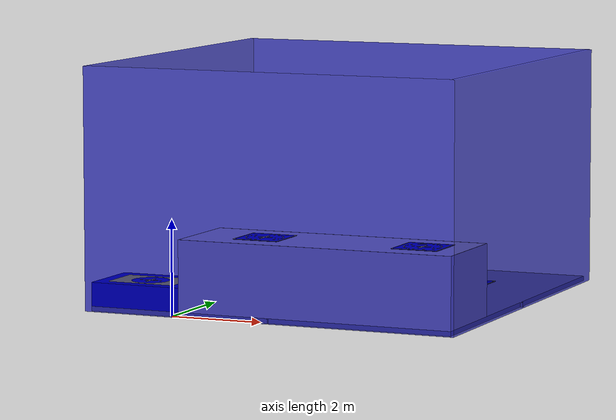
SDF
<sdf version='1.11'>
  <model name='arena_2025_desenho_4'>
    <link name='base_link'>
      <inertial>
        <pose>2.0737476890093078 3.7429410366492242 1.664153294970578 0 0 0</pose>
        <mass>209967.48191315381</mass>
        <inertia>
          <ixx>2421659.2260600538</ixx>
          <ixy>-80308.866058408283</ixy>
          <ixz>-28312.23351083498</ixz>
          <iyy>2424818.7915455648</iyy>
          <iyz>-50644.328831646133</iyz>
          <izz>3734918.123583673</izz>
        </inertia>
      </inertial>
      <collision name='base_link_collision_collision'>
        <pose>0 0 0 0 0 0</pose>
        <geometry>
          <mesh>
            <scale>0.001 0.001 0.001</scale>
            <uri>meshes/base_link.stl</uri>
          </mesh>
        </geometry>
      </collision>
      <collision name='base_link_fixed_joint_lump__parede1_collision_collision_1'>
        <pose>-1.8502115568123969 -0.041793670335398492 -1.387778780781446e-17 0 0 0</pose>
        <geometry>
          <mesh>
            <scale>0.001 0.001 0.001</scale>
            <uri>meshes/parede1.stl</uri>
          </mesh>
        </geometry>
      </collision>
      <collision name='base_link_fixed_joint_lump__parede4_collision_collision_2'>
        <pose>-1.8502115568123969 -0.041793670335399817 -2.4355517602714372e-15 0 0 0</pose>
        <geometry>
          <mesh>
            <scale>0.001 0.001 0.001</scale>
            <uri>meshes/parede4.stl</uri>
          </mesh>
        </geometry>
      </collision>
      <collision name='base_link_fixed_joint_lump__parede3_collision_collision_3'>
        <pose>-1.8502115568123969 -0.041793670335398943 1.117161918529064e-15 1.224646799147353e-16 -7.4987989133092894e-33 1.224646799147353e-16</pose>
        <geometry>
          <mesh>
            <scale>0.001 0.001 0.001</scale>
            <uri>meshes/parede3.stl</uri>
          </mesh>
        </geometry>
      </collision>
      <collision name='base_link_fixed_joint_lump__parede2_collision_collision_4'>
        <pose>-1.8502115568123969 -0.041793670335398478 -1.387778780781446e-17 0 0 0</pose>
        <geometry>
          <mesh>
            <scale>0.001 0.001 0.001</scale>
            <uri>meshes/parede2.stl</uri>
          </mesh>
        </geometry>
      </collision>
      <collision name='base_link_fixed_joint_lump__Takeoff_Baseazul_collision_collision_5'>
        <pose>-1.8502115568123969 -0.041793670335398492 2.9143354396410359e-16 0 0 0</pose>
        <geometry>
          <mesh>
            <scale>0.001 0.001 0.001</scale>
            <uri>meshes/Takeoff_Baseazul.stl</uri>
          </mesh>
        </geometry>
      </collision>
      <collision name='base_link_fixed_joint_lump__Takeoff_Baseamarelo_collision_collision_6'>
        <pose>-1.8502115568123969 -0.041793670335398492 3.6082248300317588e-16 0 0 0</pose>
        <geometry>
          <mesh>
            <scale>0.001 0.001 0.001</scale>
            <uri>meshes/Takeoff_Baseamarelo.stl</uri>
          </mesh>
        </geometry>
      </collision>
      <collision name='base_link_fixed_joint_lump__casa_paredes_collision_collision_7'>
        <pose>-1.850211556812398 -0.041793670335398492 0 0 0 0</pose>
        <geometry>
          <mesh>
            <scale>0.001 0.001 0.001</scale>
            <uri>meshes/casa_paredes.stl</uri>
          </mesh>
        </geometry>
      </collision>
      <collision name='base_link_fixed_joint_lump__casa_teto_collision_collision_8'>
        <pose>-1.8502115568123949 -0.041793670335397937 1.110223024625157e-16 0 0 0</pose>
        <geometry>
          <mesh>
            <scale>0.001 0.001 0.001</scale>
            <uri>meshes/casa_teto.stl</uri>
          </mesh>
        </geometry>
      </collision>
      <collision name='base_link_fixed_joint_lump__Landing_Basesazul6_collision_collision_9'>
        <pose>-3.3502115568124 -0.12979367033539929 -1.000000000014901 0 0 0</pose>
        <geometry>
          <mesh>
            <scale>0.001 0.001 0.001</scale>
            <uri>meshes/Landing_Basesazul6.stl</uri>
          </mesh>
        </geometry>
      </collision>
      <collision name='base_link_fixed_joint_lump__Landing_Basesamarelo_6_collision_collision_10'>
        <pose>-3.3502115568124 -0.1297936703353996 -0.0010000000149011921 0 0 0</pose>
        <geometry>
          <mesh>
            <scale>0.001 0.001 0.001</scale>
            <uri>meshes/Landing_Basesamarelo_6.stl</uri>
          </mesh>
        </geometry>
      </collision>
      <collision name='base_link_fixed_joint_lump__Landing_Basesazul5_collision_collision_11'>
        <pose>-1.850211556812386 -2.0417936703353909 -0.80000000001490135 0 0 0</pose>
        <geometry>
          <mesh>
            <scale>0.001 0.001 0.001</scale>
            <uri>meshes/Landing_Basesazul5.stl</uri>
          </mesh>
        </geometry>
      </collision>
      <collision name='base_link_fixed_joint_lump__Landing_Basesamarelo_5_collision_collision_12'>
        <pose>-1.850211556812406 -2.0417936703353989 1.499999999985099 0 0 0</pose>
        <geometry>
          <mesh>
            <scale>0.001 0.001 0.001</scale>
            <uri>meshes/Landing_Basesamarelo_5.stl</uri>
          </mesh>
        </geometry>
      </collision>
      <collision name='base_link_fixed_joint_lump__base_movelzinza2_collision_collision_13'>
        <pose>0.14978851318359249 -3.0417936706542972 -1.701000000014901 0 0 0</pose>
        <geometry>
          <mesh>
            <scale>0.001 0.001 0.001</scale>
            <uri>meshes/base_movelzinza2.stl</uri>
          </mesh>
        </geometry>
      </collision>
      <collision name='base_link_fixed_joint_lump__Landing_Basesazul2_collision_collision_14'>
        <pose>0.14978851318359959 -3.041793670654287 -0.001000016108155283 0 0 0</pose>
        <geometry>
          <mesh>
            <scale>0.001 0.001 0.001</scale>
            <uri>meshes/Landing_Basesazul2.stl</uri>
          </mesh>
        </geometry>
      </collision>
      <collision name='base_link_fixed_joint_lump__Landing_Basesamarelo_2_collision_collision_15'>
        <pose>0.1497885131836032 -3.0417936706542812 -0.001000016108155283 0 0 0</pose>
        <geometry>
          <mesh>
            <scale>0.001 0.001 0.001</scale>
            <uri>meshes/Landing_Basesamarelo_2.stl</uri>
          </mesh>
        </geometry>
      </collision>
      <collision name='base_link_fixed_joint_lump__base_movelzinza1_collision_collision_16'>
        <pose>0.34978851318359938 2.6582063293457212 -1.701000000014901 0 0 0</pose>
        <geometry>
          <mesh>
            <scale>0.001 0.001 0.001</scale>
            <uri>meshes/base_movelzinza1.stl</uri>
          </mesh>
        </geometry>
      </collision>
      <collision name='base_link_fixed_joint_lump__Landing_Basesazul1_collision_collision_17'>
        <pose>0.34978851318360071 2.6582063293457252 -2.775557561562891e-17 0 0 0</pose>
        <geometry>
          <mesh>
            <scale>0.001 0.001 0.001</scale>
            <uri>meshes/Landing_Basesazul1.stl</uri>
          </mesh>
        </geometry>
      </collision>
      <collision name='base_link_fixed_joint_lump__Landing_Basesamarelo_1_collision_collision_18'>
        <pose>0.34978851318360471 2.6582063293457359 -2.775557561562891e-17 0 0 0</pose>
        <geometry>
          <mesh>
            <scale>0.001 0.001 0.001</scale>
            <uri>meshes/Landing_Basesamarelo_1.stl</uri>
          </mesh>
        </geometry>
      </collision>
      <collision name='base_link_fixed_joint_lump__Landing_Basesazul3_collision_collision_19'>
        <pose>-1.3502114868164059 -2.0417936706542972 -1.500000000014901 0 0 0</pose>
        <geometry>
          <mesh>
            <scale>0.001 0.001 0.001</scale>
            <uri>meshes/Landing_Basesazul3.stl</uri>
          </mesh>
        </geometry>
      </collision>
      <collision name='base_link_fixed_joint_lump__Landing_Basesamarelo_3_collision_collision_20'>
        <pose>-1.3502114868164059 -2.0417936706542972 -1.4901219147489538e-11 0 0 0</pose>
        <geometry>
          <mesh>
            <scale>0.001 0.001 0.001</scale>
            <uri>meshes/Landing_Basesamarelo_3.stl</uri>
          </mesh>
        </geometry>
      </collision>
      <collision name='base_link_fixed_joint_lump__Landing_Basesazul4_collision_collision_21'>
        <pose>0.14978851318359249 1.458206329345703 -1.000000000014901 0 0 0</pose>
        <geometry>
          <mesh>
            <scale>0.001 0.001 0.001</scale>
            <uri>meshes/Landing_Basesazul4.stl</uri>
          </mesh>
        </geometry>
      </collision>
      <collision name='base_link_fixed_joint_lump__Landing_Basesamarelo_4_collision_collision_22'>
        <pose>0.14978851318359249 1.458206329345703 -1.4901219147489538e-11 0 0 0</pose>
        <geometry>
          <mesh>
            <scale>0.001 0.001 0.001</scale>
            <uri>meshes/Landing_Basesamarelo_4.stl</uri>
          </mesh>
        </geometry>
      </collision>

      #visuals cores

      <visual name='base_link_visual_visual'>
        <pose>0 0 0 0 0 0</pose>
        <geometry>
          <mesh>
            <scale>0.001 0.001 0.001</scale>
            <uri>meshes/base_link.stl</uri>
          </mesh>
        </geometry>
        <material>
          <ambient>0.4 0.4 0.4 1</ambient>
          <diffuse>0.6 0.6 0.6 1</diffuse>
          <specular>0.8 0.8 0.8 1</specular>
        </material>
      </visual>
      <visual name='base_link_fixed_joint_lump__parede1_visual_visual_1'>
        <pose>-1.8502115568123969 -0.041793670335398492 -1.387778780781446e-17 0 0 0</pose>
        <geometry>
          <mesh>
            <scale>0.001 0.001 0.001</scale>
            <uri>meshes/parede1.stl</uri>
          </mesh>
        </geometry>
        <material>
          <ambient>0.0 0.0 0.5 0.65</ambient>
          <diffuse>0.0 0.0 0.8 0.65</diffuse>
          <specular>0.3 0.3 0.8 0.65</specular>
          <transparency>0.65</transparency>
        </material>
      </visual>
      <visual name='base_link_fixed_joint_lump__parede4_visual_visual_2'>
        <pose>-1.8502115568123969 -0.041793670335399817 -2.4355517602714372e-15 0 0 0</pose>
        <geometry>
          <mesh>
            <scale>0.001 0.001 0.001</scale>
            <uri>meshes/parede4.stl</uri>
          </mesh>
        </geometry>
        <material>
          <ambient>0.0 0.0 0.5 0.65</ambient>
          <diffuse>0.0 0.0 0.8 0.65</diffuse>
          <specular>0.3 0.3 0.8 0.65</specular>
          <transparency>0.65</transparency>
        </material>
      </visual>
      <visual name='base_link_fixed_joint_lump__parede3_visual_visual_3'>
        <pose>-1.8502115568123969 -0.041793670335398943 1.117161918529064e-15 1.224646799147353e-16 -7.4987989133092894e-33 1.224646799147353e-16</pose>
        <geometry>
          <mesh>
            <scale>0.001 0.001 0.001</scale>
            <uri>meshes/parede3.stl</uri>
          </mesh>
        </geometry>
        <material>
          <ambient>0.0 0.0 0.5 0.65</ambient>
          <diffuse>0.0 0.0 0.8 0.65</diffuse>
          <specular>0.3 0.3 0.8 0.65</specular>
          <transparency>0.65</transparency>
        </material>
      </visual>
      <visual name='base_link_fixed_joint_lump__parede2_visual_visual_4'>
        <pose>-1.8502115568123969 -0.041793670335398478 -1.387778780781446e-17 0 0 0</pose>
        <geometry>
          <mesh>
            <scale>0.001 0.001 0.001</scale>
            <uri>meshes/parede2.stl</uri>
          </mesh>
        </geometry>
        <material>
          <ambient>0.0 0.0 0.5 0.65</ambient>
          <diffuse>0.0 0.0 0.8 0.65</diffuse>
          <specular>0.3 0.3 0.8 0.65</specular>
          <transparency>0.65</transparency>
        </material>
      </visual>
      <visual name='base_link_fixed_joint_lump__Takeoff_Baseazul_visual_visual_5'>
        <pose>-1.8502115568123969 -0.041793670335398492 2.9143354396410359e-16 0 0 0</pose>
        <geometry>
          <mesh>
            <scale>0.001 0.001 0.001</scale>
            <uri>meshes/Takeoff_Baseazul.stl</uri>
          </mesh>
        </geometry>
        <material>
          <ambient>0.0 0.0 0.5 1</ambient>
          <diffuse>0.0 0.0 0.8 1</diffuse>
          <specular>0.3 0.3 0.8 1</specular>
        </material>
      </visual>
      <visual name='base_link_fixed_joint_lump__Takeoff_Baseamarelo_visual_visual_6'>
        <pose>-1.8502115568123969 -0.041793670335398492 3.6082248300317588e-16 0 0 0</pose>
        <geometry>
          <mesh>
            <scale>0.001 0.001 0.001</scale>
            <uri>meshes/Takeoff_Baseamarelo.stl</uri>
          </mesh>
        </geometry>
        <material>
          <ambient>0.8 0.8 0.0 1</ambient>
          <diffuse>1.0 1.0 0.0 1</diffuse>
           <specular>0.8 0.8 0.3 1</specular>
        </material>
      </visual>
      <visual name='base_link_fixed_joint_lump__casa_paredes_visual_visual_7'>
        <pose>-1.850211556812398 -0.041793670335398492 0 0 0 0</pose>
        <geometry>
          <mesh>
            <scale>0.001 0.001 0.001</scale>
            <uri>meshes/casa_paredes.stl</uri>
          </mesh>
        </geometry>
        <material>
          <ambient>0.92 0.90 0.85 1</ambient>
          <diffuse>0.94 0.92 0.87 1</diffuse>
          <specular>0.14 0.14 0.13 1</specular>
        </material>
      </visual>
      <visual name='base_link_fixed_joint_lump__casa_teto_visual_visual_8'>
        <pose>-1.8502115568123949 -0.041793670335397937 1.110223024625157e-16 0 0 0</pose>
        <geometry>
          <mesh>
            <scale>0.001 0.001 0.001</scale>
            <uri>meshes/casa_teto.stl</uri>
          </mesh>
        </geometry>
        <material>
          <ambient>0.92 0.90 0.85 1</ambient>
          <diffuse>0.94 0.92 0.87 1</diffuse>
          <specular>0.14 0.14 0.13 1</specular>
        </material>
      </visual>
      <visual name='base_link_fixed_joint_lump__Landing_Basesazul6_visual_visual_9'>
        <pose>-3.3502115568124 -0.12979367033539929 -1.000000000014901 0 0 0</pose>
        <geometry>
          <mesh>
            <scale>0.001 0.001 0.001</scale>
            <uri>meshes/Landing_Basesazul6.stl</uri>
          </mesh>
        </geometry>
        <material>
          <ambient>0.0 0.0 0.5 1</ambient>
          <diffuse>0.0 0.0 0.8 1</diffuse>
          <specular>0.3 0.3 0.8 1</specular>
        </material>
      </visual>
      <visual name='base_link_fixed_joint_lump__Landing_Basesamarelo_6_visual_visual_10'>
        <pose>-3.3502115568124 -0.1297936703353996 -0.0010000000149011921 0 0 0</pose>
        <geometry>
          <mesh>
            <scale>0.001 0.001 0.001</scale>
            <uri>meshes/Landing_Basesamarelo_6.stl</uri>
          </mesh>
        </geometry>
        <material>
          <ambient>0.8 0.8 0.0 1</ambient>
          <diffuse>1.0 1.0 0.0 1</diffuse>
           <specular>0.8 0.8 0.3 1</specular>
        </material>
      </visual>
      <visual name='base_link_fixed_joint_lump__Landing_Basesazul5_visual_visual_11'>
        <pose>-1.850211556812386 -2.0417936703353909 -0.80000000001490135 0 0 0</pose>
        <geometry>
          <mesh>
            <scale>0.001 0.001 0.001</scale>
            <uri>meshes/Landing_Basesazul5.stl</uri>
          </mesh>
        </geometry>
        <material>
          <ambient>0.0 0.0 0.5 1</ambient>
          <diffuse>0.0 0.0 0.8 1</diffuse>
          <specular>0.3 0.3 0.8 1</specular>
        </material>
      </visual>
      <visual name='base_link_fixed_joint_lump__Landing_Basesamarelo_5_visual_visual_12'>
        <pose>-1.850211556812406 -2.0417936703353989 1.499999999985099 0 0 0</pose>
        <geometry>
          <mesh>
            <scale>0.001 0.001 0.001</scale>
            <uri>meshes/Landing_Basesamarelo_5.stl</uri>
          </mesh>
        </geometry>
        <material>
          <ambient>0.8 0.8 0.0 1</ambient>
          <diffuse>1.0 1.0 0.0 1</diffuse>
           <specular>0.8 0.8 0.3 1</specular>
        </material>
      </visual>
      <visual name='base_link_fixed_joint_lump__base_movelzinza2_visual_visual_13'>
        <pose>0.14978851318359249 -3.0417936706542972 -1.701000000014901 0 0 0</pose>
        <geometry>
          <mesh>
            <scale>0.001 0.001 0.001</scale>
            <uri>meshes/base_movelzinza2.stl</uri>
          </mesh>
        </geometry>
        <material>
          <ambient>0.92 0.90 0.85 1</ambient>
          <diffuse>0.94 0.92 0.87 1</diffuse>
          <specular>0.14 0.14 0.13 1</specular>
        </material>
      </visual>
      <visual name='base_link_fixed_joint_lump__Landing_Basesazul2_visual_visual_14'>
        <pose>0.14978851318359959 -3.041793670654287 -0.001000016108155283 0 0 0</pose>
        <geometry>
          <mesh>
            <scale>0.001 0.001 0.001</scale>
            <uri>meshes/Landing_Basesazul2.stl</uri>
          </mesh>
        </geometry>
        <material>
          <ambient>0.0 0.0 0.5 1</ambient>
          <diffuse>0.0 0.0 0.8 1</diffuse>
          <specular>0.3 0.3 0.8 1</specular>
        </material>
      </visual>
      <visual name='base_link_fixed_joint_lump__Landing_Basesamarelo_2_visual_visual_15'>
        <pose>0.1497885131836032 -3.0417936706542812 -0.001000016108155283 0 0 0</pose>
        <geometry>
          <mesh>
            <scale>0.001 0.001 0.001</scale>
            <uri>meshes/Landing_Basesamarelo_2.stl</uri>
          </mesh>
        </geometry>
        <material>
          <ambient>0.8 0.8 0.0 1</ambient>
          <diffuse>1.0 1.0 0.0 1</diffuse>
           <specular>0.8 0.8 0.3 1</specular>
        </material>
      </visual>
      <visual name='base_link_fixed_joint_lump__base_movelzinza1_visual_visual_16'>
        <pose>0.34978851318359938 2.6582063293457212 -1.701000000014901 0 0 0</pose>
        <geometry>
          <mesh>
            <scale>0.001 0.001 0.001</scale>
            <uri>meshes/base_movelzinza1.stl</uri>
          </mesh>
        </geometry>
        <material>
          <ambient>0.92 0.90 0.85 1</ambient>
          <diffuse>0.94 0.92 0.87 1</diffuse>
          <specular>0.14 0.14 0.13 1</specular>
        </material>
      </visual>
      <visual name='base_link_fixed_joint_lump__Landing_Basesazul1_visual_visual_17'>
        <pose>0.34978851318360071 2.6582063293457252 -2.775557561562891e-17 0 0 0</pose>
        <geometry>
          <mesh>
            <scale>0.001 0.001 0.001</scale>
            <uri>meshes/Landing_Basesazul1.stl</uri>
          </mesh>
        </geometry>
        <material>
          <ambient>0.0 0.0 0.5 1</ambient>
          <diffuse>0.0 0.0 0.8 1</diffuse>
          <specular>0.3 0.3 0.8 1</specular>
        </material>
      </visual>
      <visual name='base_link_fixed_joint_lump__Landing_Basesamarelo_1_visual_visual_18'>
        <pose>0.34978851318360471 2.6582063293457359 -2.775557561562891e-17 0 0 0</pose>
        <geometry>
          <mesh>
            <scale>0.001 0.001 0.001</scale>
            <uri>meshes/Landing_Basesamarelo_1.stl</uri>
          </mesh>
        </geometry>
        <material>
          <ambient>0.8 0.8 0.0 1</ambient>
          <diffuse>1.0 1.0 0.0 1</diffuse>
           <specular>0.8 0.8 0.3 1</specular>
        </material>
      </visual>
      <visual name='base_link_fixed_joint_lump__Landing_Basesazul3_visual_visual_19'>
        <pose>-1.3502114868164059 -2.0417936706542972 -1.500000000014901 0 0 0</pose>
        <geometry>
          <mesh>
            <scale>0.001 0.001 0.001</scale>
            <uri>meshes/Landing_Basesazul3.stl</uri>
          </mesh>
        </geometry>
        <material>
          <ambient>0.0 0.0 0.5 1</ambient>
          <diffuse>0.0 0.0 0.8 1</diffuse>
          <specular>0.3 0.3 0.8 1</specular>
        </material>
      </visual>
      <visual name='base_link_fixed_joint_lump__Landing_Basesamarelo_3_visual_visual_20'>
        <pose>-1.3502114868164059 -2.0417936706542972 -1.4901219147489538e-11 0 0 0</pose>
        <geometry>
          <mesh>
            <scale>0.001 0.001 0.001</scale>
            <uri>meshes/Landing_Basesamarelo_3.stl</uri>
          </mesh>
        </geometry>
        <material>
          <ambient>0.8 0.8 0.0 1</ambient>
          <diffuse>1.0 1.0 0.0 1</diffuse>
           <specular>0.8 0.8 0.3 1</specular>
        </material>
      </visual>
      <visual name='base_link_fixed_joint_lump__Landing_Basesazul4_visual_visual_21'>
        <pose>0.14978851318359249 1.458206329345703 -1.000000000014901 0 0 0</pose>
        <geometry>
          <mesh>
            <scale>0.001 0.001 0.001</scale>
            <uri>meshes/Landing_Basesazul4.stl</uri>
          </mesh>
        </geometry>
        <material>
          <ambient>0.0 0.0 0.5 1</ambient>
          <diffuse>0.0 0.0 0.8 1</diffuse>
          <specular>0.3 0.3 0.8 1</specular>
        </material>
      </visual>
      <visual name='base_link_fixed_joint_lump__Landing_Basesamarelo_4_visual_visual_22'>
        <pose>0.14978851318359249 1.458206329345703 -1.4901219147489538e-11 0 0 0</pose>
        <geometry>
          <mesh>
            <scale>0.001 0.001 0.001</scale>
            <uri>meshes/Landing_Basesamarelo_4.stl</uri>
          </mesh>
        </geometry>
        <material>
          <ambient>0.8 0.8 0.0 1</ambient>
          <diffuse>1.0 1.0 0.0 1</diffuse>
           <specular>0.8 0.8 0.3 1</specular>
        </material>
      </visual>
    </link>
    <frame name='base_link_Rígido-31' attached_to='base_link'>
      <pose>-1.900211556812397 3.958206329664602 0.050000000000000051 0 -1.5707963267948966 0</pose>
    </frame>
    <frame name='parede1' attached_to='base_link_Rígido-31'>
      <pose>0 0 0 0 0 0</pose>
    </frame>
    <frame name='base_link_Rígido-32' attached_to='base_link'>
      <pose>2.1497884431876031 8.0082063296646009 0.050000000000000051 -1.5707963267948959 0 0</pose>
    </frame>
    <frame name='parede4' attached_to='base_link_Rígido-32'>
      <pose>0 0 0 0 0 0</pose>
    </frame>
    <frame name='base_link_Rígido-33' attached_to='base_link'>
      <pose>6.1997884431876038 3.958206319664602 0.050000000000000051 -3.1415926535897931 -1.5707963267948966 0</pose>
    </frame>
    <frame name='parede3' attached_to='base_link_Rígido-33'>
      <pose>0 0 0 0 0 0</pose>
    </frame>
    <frame name='base_link_Rígido-34' attached_to='base_link'>
      <pose>2.1497884431876031 -0.091793670335398481 0.050000000000000051 1.5707963267948959 0 0</pose>
    </frame>
    <frame name='parede2' attached_to='base_link_Rígido-34'>
      <pose>0 0 0 0 0 0</pose>
    </frame>
    <frame name='Takeoff_Baseazul_Rígido-44' attached_to='Takeoff_Baseazul'>
      <pose>0 0 0.49099999999999999 0 0 0</pose>
    </frame>
    <frame name='Takeoff_Baseamarelo' attached_to='Takeoff_Baseazul_Rígido-44'>
      <pose>0 0 0 0 0 0</pose>
    </frame>
    <frame name='base_link_Rígido-35' attached_to='base_link'>
      <pose>-0.85021155681239691 0.70820632966460151 0.09900000000000006 0 0 0</pose>
    </frame>
    <frame name='Takeoff_Baseazul' attached_to='base_link_Rígido-35'>
      <pose>0 0 0 0 0 0</pose>
    </frame>
    <frame name='Landing_Basesazul6_Rígido-50' attached_to='Landing_Basesazul6'>
      <pose>0 -1.4210854715201999e-16 0.0050000000000000001 0 0 0</pose>
    </frame>
    <frame name='Landing_Basesamarelo_6' attached_to='Landing_Basesazul6_Rígido-50'>
      <pose>0 0 0 0 0 0</pose>
    </frame>
    <frame name='casa_teto_Rígido-62' attached_to='casa_teto'>
      <pose>-1.48800003 4.5400000000483941e-06 0.0040000000000000573 0 0 0</pose>
    </frame>
    <frame name='Landing_Basesazul6' attached_to='casa_teto_Rígido-62'>
      <pose>0 0 0 0 0 0</pose>
    </frame>
    <frame name='Landing_Basesazul5_Rígido-49' attached_to='Landing_Basesazul5'>
      <pose>0 -1.4210854715201999e-16 0.0050000000000000001 0 0 0</pose>
    </frame>
    <frame name='Landing_Basesamarelo_5' attached_to='Landing_Basesazul5_Rígido-49'>
      <pose>0 0 0 0 0 0</pose>
    </frame>
    <frame name='casa_teto_Rígido-63' attached_to='casa_teto'>
      <pose>2.0119999700000002 4.5400000000483941e-06 0.0040000000000000573 0 0 0</pose>
    </frame>
    <frame name='Landing_Basesazul5' attached_to='casa_teto_Rígido-63'>
      <pose>0 0 0 0 0 0</pose>
    </frame>
    <frame name='casa_paredes_Rígido-42' attached_to='casa_paredes'>
      <pose>0 0 1.522 0 0 0</pose>
    </frame>
    <frame name='casa_teto' attached_to='casa_paredes_Rígido-42'>
      <pose>0 0 0 0 0 0</pose>
    </frame>
    <frame name='base_link_Rígido-41' attached_to='base_link'>
      <pose>3.1377884731876029 0.95820178966460146 0.073000000000000065 0 0 0</pose>
    </frame>
    <frame name='casa_paredes' attached_to='base_link_Rígido-41'>
      <pose>0 0 0 0 0 0</pose>
    </frame>
    <frame name='Landing_Basesazul2_Rígido-61' attached_to='Landing_Basesazul2'>
      <pose>0 0 0.0099999800000000506 0 0 0</pose>
    </frame>
    <frame name='Landing_Basesamarelo_2' attached_to='Landing_Basesazul2_Rígido-61'>
      <pose>0 0 0 0 0 0</pose>
    </frame>
    <frame name='base_movelzinza2_Rígido-60' attached_to='base_movelzinza2'>
      <pose>0 0 0.97999999999999998 0 0 0</pose>
    </frame>
    <frame name='Landing_Basesazul2' attached_to='base_movelzinza2_Rígido-60'>
      <pose>0 0 0 0 0 0</pose>
    </frame>
    <frame name='base_link_Rígido-64' attached_to='base_link'>
      <pose>4.6497885131876027 3.458206329664602 0.09900000000000006 0 0 0</pose>
    </frame>
    <frame name='base_movelzinza2' attached_to='base_link_Rígido-64'>
      <pose>0 0 0 0 0 0</pose>
    </frame>
    <frame name='Landing_Basesazul1_Rígido-57' attached_to='Landing_Basesazul1'>
      <pose>0 0 0.01099999999999994 0 0 0</pose>
    </frame>
    <frame name='Landing_Basesamarelo_1' attached_to='Landing_Basesazul1_Rígido-57'>
      <pose>0 0 0 0 0 0</pose>
    </frame>
    <frame name='base_movelzinza1_Rígido-56' attached_to='base_movelzinza1'>
      <pose>0 0 0.72999999999999998 0 0 0</pose>
    </frame>
    <frame name='Landing_Basesazul1' attached_to='base_movelzinza1_Rígido-56'>
      <pose>0 0 0 0 0 0</pose>
    </frame>
    <frame name='base_link_Rígido-65' attached_to='base_link'>
      <pose>1.3497885131876031 5.6582063296646012 0.09900000000000006 0 0 0</pose>
    </frame>
    <frame name='base_movelzinza1' attached_to='base_link_Rígido-65'>
      <pose>0 0 0 0 0 0</pose>
    </frame>
    <frame name='Landing_Basesazul3_Rígido-46' attached_to='Landing_Basesazul3'>
      <pose>0 0 0.0059999999999999967 0 0 0</pose>
    </frame>
    <frame name='Landing_Basesamarelo_3' attached_to='Landing_Basesazul3_Rígido-46'>
      <pose>0 0 0 0 0 0</pose>
    </frame>
    <frame name='base_link_Rígido-66' attached_to='base_link'>
      <pose>0.14978851318760319 3.958206329664602 0.09900000000000006 0 0 0</pose>
    </frame>
    <frame name='Landing_Basesazul3' attached_to='base_link_Rígido-66'>
      <pose>0 0 0 0 0 0</pose>
    </frame>
    <frame name='Landing_Basesazul4_Rígido-48' attached_to='Landing_Basesazul4'>
      <pose>0 0 0.0050000000000000001 0 0 0</pose>
    </frame>
    <frame name='Landing_Basesamarelo_4' attached_to='Landing_Basesazul4_Rígido-48'>
      <pose>0 0 0 0 0 0</pose>
    </frame>
    <frame name='base_link_Rígido-67' attached_to='base_link'>
      <pose>4.1497885131876027 5.958206329664602 0.09900000000000006 0 0 0</pose>
    </frame>
    <frame name='Landing_Basesazul4' attached_to='base_link_Rígido-67'>
      <pose>0 0 0 0 0 0</pose>
    </frame>
  </model>
</sdf>
